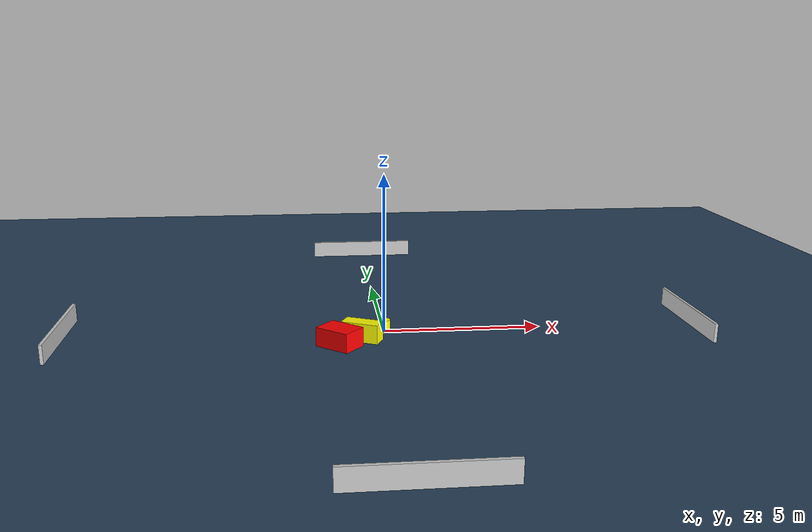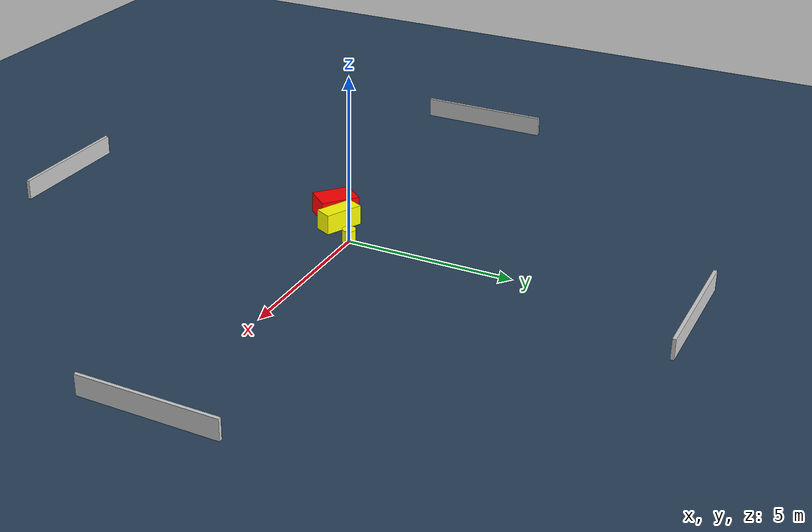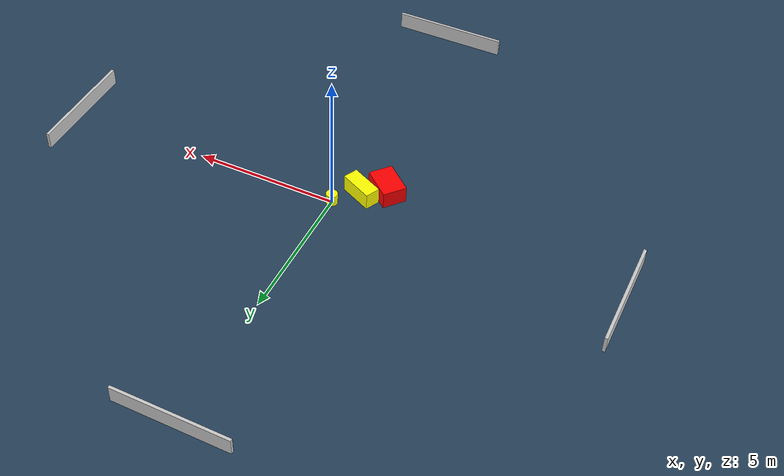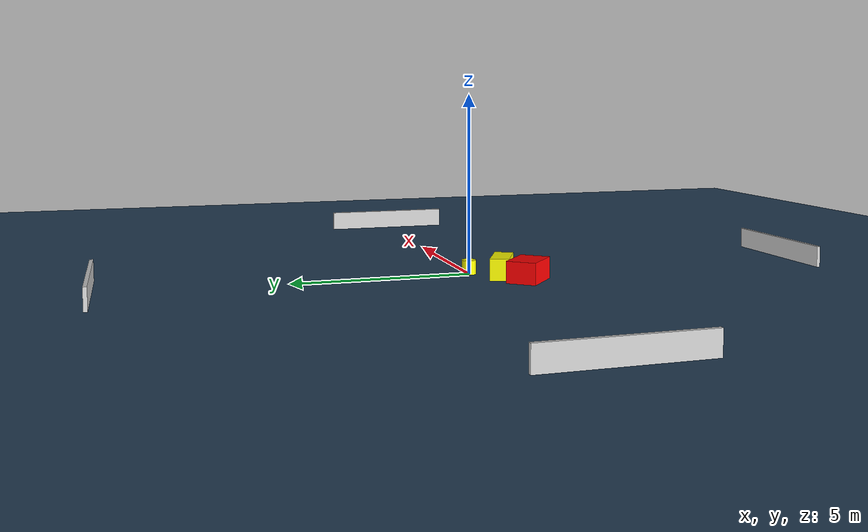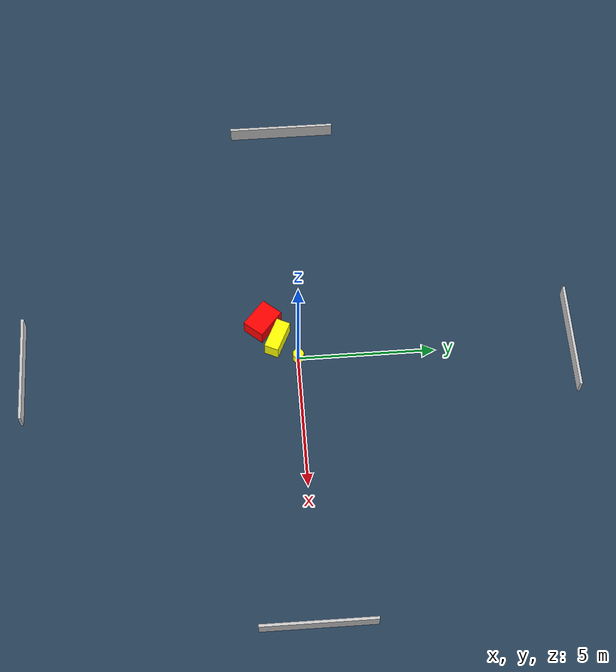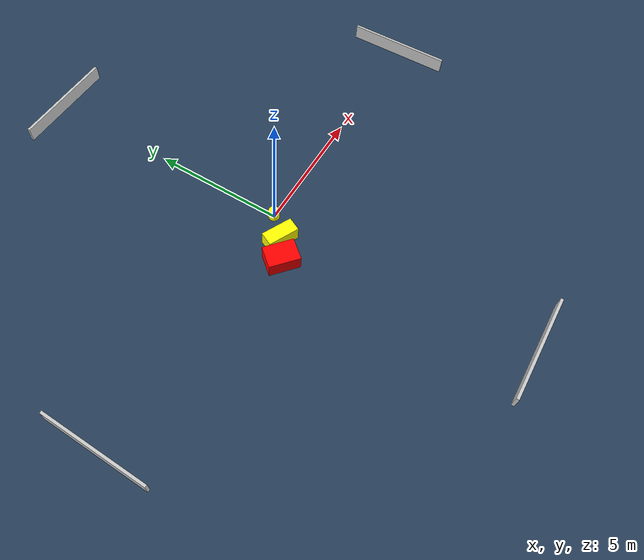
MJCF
<?xml version="1.0" ?>
<mujoco model="generated_environment">
  <option timestep="0.01" integrator="RK4" cone="elliptic"/>
  <default>
    <geom density="1"/>
  </default>
  <asset>
    <texture builtin="gradient" height="3072" name="skybox" rgb1="0.3 0.5 0.7" rgb2="0 0 0" type="skybox" width="512"/>
    <texture builtin="checker" height="300" name="groundplane" rgb1="0.2 0.3 0.4" rgb2="0.1 0.2 0.3" type="2d" width="300"/>
    <material name="groundplane" reflectance="0.2" texrepeat="5 5" texture="groundplane"/>
  </asset>
  <worldbody>
    <light dir="0 0 -1" directional="true" pos="0 0 1.5"/>
    <geom condim="3" friction="0.5 0.005 0.001" material="groundplane" name="floor" pos="0 0 0" size="0 0 0.05" type="plane"/>
    <body name="walls">
      <geom name="wall_1" condim="4" pos="-10.0 0.0 0.3" rgba="0.800000011920929 0.800000011920929 0.800000011920929 1.0" size="0.05 2.0 0.3" type="box"/>
      <geom name="wall_2" condim="4" pos="10.0 0.0 0.3" rgba="0.800000011920929 0.800000011920929 0.800000011920929 1.0" size="0.05 2.0 0.3" type="box"/>
      <geom name="wall_3" condim="4" pos="0.0 -10.0 0.3" rgba="0.800000011920929 0.800000011920929 0.800000011920929 1.0" size="2.0 0.05 0.3" type="box"/>
      <geom name="wall_4" condim="4" pos="0.0 10.0 0.3" rgba="0.800000011920929 0.800000011920929 0.800000011920929 1.0" size="2.0 0.05 0.3" type="box"/>
    </body>
    <body name="robot">
      <joint name="joint_x" type="slide" pos="0 0 0" axis="1 0 0"/>
      <joint name="joint_y" type="slide" pos="0 0 0" axis="0 1 0"/>
      <geom name="robot" type="cylinder" pos="0.0 0.0 0.2" size="0.2 0.2 0.0" mass="5.0" friction="1.0 0.005 0.0001" condim="4" rgba="1.0 1.0 0.0 1.0"/>
    </body>
    <body name="obstacle_1_movable">
      <geom name="obstacle_1_movable" condim="4" pos="-0.7366102482804987 -0.716867152008012 0.3" euler="0 0 334.44048404945227" friction="0.0 0.005 0.001" rgba="1.0 1.0 0.0 1.0" size="0.5950551795954085 0.26304759623138596 0.3" type="box" mass="0.1"/>
      <joint type="free"/>
    </body>
    <body name="obstacle_2_static">
      <geom name="obstacle_2_static" condim="4" pos="-1.4580268727178625 -1.216189830689107 0.3" euler="0 0 49.61844239205295" friction="0.0 0.005 0.001" rgba="1.0 0.0 0.0 1.0" size="0.4161368789383228 0.5832736313314817 0.3" type="box"/>
    </body>
  </worldbody>
  <actuator>
    <motor name="actuator_x" joint="joint_x" gear="1" ctrlrange="-1 1"/>
    <motor name="actuator_y" joint="joint_y" gear="1" ctrlrange="-1 1"/>
  </actuator>
</mujoco>
